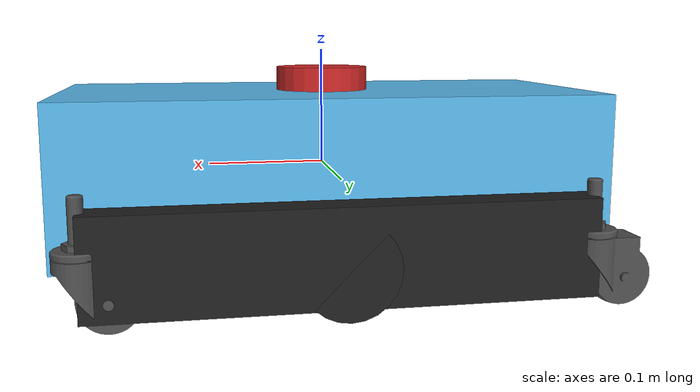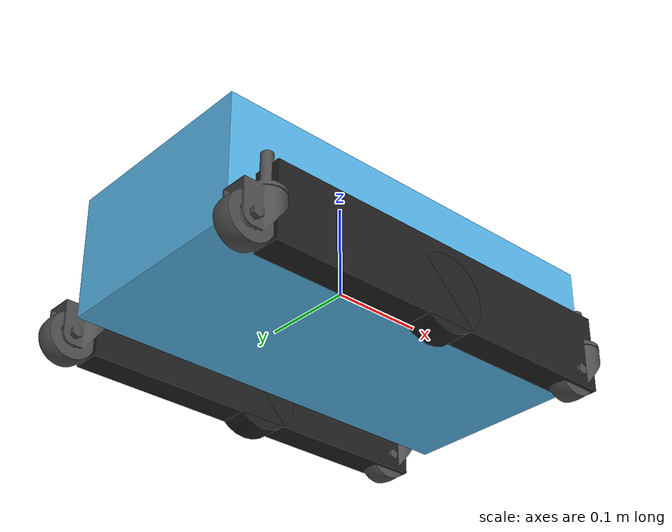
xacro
<?xml version="1.0" ?>

<robot name="eSAUl" xmlns:xacro="http://www.ros.org/wiki/xacro">

  <xacro:include filename="$(find esaul_description)/urdf/track.xacro" />
  <xacro:include filename="$(find esaul_description)/urdf/wheel.xacro" />
  <xacro:include filename="$(find esaul_description)/urdf/lidar.xacro" />
  <xacro:include filename="$(find esaul_description)/urdf/imu.xacro" />

  <xacro:property name="M_PI" value="3.1415926535897931" />

  <xacro:property name="chassis_mass" value="20" />
  <xacro:property name="chassis_length" value="0.45" />
  <xacro:property name="chassis_width" value="0.22" />
  <xacro:property name="chassis_height" value="0.13" />

  <xacro:property name="wheel_friction" value="1.75" />

  <!-- INERTIAL MACROS -->
  <xacro:macro name="null_inertial">
    <inertial>
      <mass value="0.01"/>
      <inertia ixx="0.01" ixy="0" ixz="0"
               iyy="0.01" iyz="0"
               izz="0.01"/>
      </inertial>
  </xacro:macro>

  <xacro:macro name="default_inertial" params="mass">
    <inertial>
      <mass value="${mass}" />
    <inertia ixx="1.0" ixy="0.0" ixz="0.0"
             iyy="1.0" iyz="0.0"
             izz="1.0" />
    </inertial>
  </xacro:macro>

  <xacro:macro name="solid_cuboid_inertial"
               params="width length height mass *origin">
    <inertial>
      <xacro:insert_block name="origin"/>
      <mass value="${mass}"/>
      <inertia ixx="${mass * (width * width + height * height) / 12}"
               ixy="0" ixz="0"
               iyy="${mass * (length * length + height * height) / 12}"
               iyz="0"
               izz="${mass * (width * width + length * length) / 12}"/>
    </inertial>
  </xacro:macro>

  <!-- INERTIAL MACROS END -->

  <link name="base_link">
    <collision name="collision_chassis">
      <geometry>
        <box size="${chassis_length} ${chassis_width} ${chassis_height}"/>
      </geometry>
    </collision>
    <visual>
      <geometry>
        <box size="${chassis_length} ${chassis_width} ${chassis_height}"/>
      </geometry>
    </visual>
    <xacro:solid_cuboid_inertial
          length="${chassis_length}" width="${chassis_width}"
          height="${chassis_height}" mass="${chassis_mass}">
      <origin xyz="0 0 0" rpy="0 0 0" />
    </xacro:solid_cuboid_inertial>
  </link>

  <xacro:link_track name="link_right" />
	<xacro:joint_track name="joint_right" child="link_right" origin_xyz="0 ${-chassis_width/2-box_width/1.5} ${-2.1*box_width}" />

  <xacro:link_wheel name="right_wheel" />
	<xacro:joint_wheel_right name="joint_right_wheel" child="right_wheel" origin_xyz="0 0 0" />

  <xacro:link_track name="link_left" />
	<xacro:joint_track name="joint_left" child="link_left" origin_xyz="0 ${chassis_width/2+box_width/1.5} ${-2.1*box_width}" />

  <xacro:link_wheel name="left_wheel" />
	<xacro:joint_wheel_left name="joint_left_wheel" child="left_wheel" origin_xyz="0 0 0" />

  <xacro:support_wheel parent="link_left" location="left_1">
    <origin xyz="${box_length/2} 0 0.027965" rpy="0 0 0" />
  </xacro:support_wheel>

  <xacro:support_wheel parent="link_left" location="left_2">
    <origin xyz="${-box_length/2} 0 0.027965" rpy="0 0 0" />
  </xacro:support_wheel>

  <xacro:support_wheel parent="link_right" location="right_1">
    <origin xyz="${box_length/2} 0 0.027965" rpy="0 0 0" />
  </xacro:support_wheel>

  <xacro:support_wheel parent="link_right" location="right_2">
    <origin xyz="${-box_length/2} 0 0.027965" rpy="0 0 0" />
  </xacro:support_wheel>

  <gazebo>
    		<plugin name="ModelPlugin" filename="libesaul_plugin.so" >
      		<robotName>eSAUl</robotName>
            <joint_left>joint_left_wheel</joint_left>
            <joint_right>joint_right_wheel</joint_right>
            <width_chassis>${chassis_width}</width_chassis>
            <wh_rad>${track_rad}</wh_rad>
   		 </plugin>
	</gazebo>

 </robot>

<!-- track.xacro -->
<robot xmlns:xacro="http://www.ros.org/wiki/xacro">

  <xacro:property name="track_mass" value="0.3" />
  <xacro:property name="box_length" value="0.4" />
  <xacro:property name="box_width" value="0.03" />
  <xacro:property name="box_height" value="0.08" />

  <xacro:macro name="null_inertial">
    <inertial>
      <mass value="0.01"/>
      <inertia ixx="0.01" ixy="0" ixz="0"
               iyy="0.01" iyz="0"
               izz="0.01"/>
      </inertial>
  </xacro:macro>

   <xacro:macro name="solid_cuboid_inertial"
               params="width length height mass *origin">
    <inertial>
      <xacro:insert_block name="origin"/>
      <mass value="${mass}"/>
      <inertia ixx="${mass * (width * width + height * height) / 12}"
               ixy="0" ixz="0"
               iyy="${mass * (length * length + height * height) / 12}"
               iyz="0"
               izz="${mass * (width * width + length * length) / 12}"/>
    </inertial>
  </xacro:macro>

   <xacro:macro name="link_track" params="name">
    <link name="${name}">
      <collision name="collision_left_track">
        <origin rpy="0 0 0" xyz="0 0 0.01"/>
        <geometry>
          <box size="${box_length} ${box_width} ${box_height}"/>
        </geometry>
      </collision>
      <visual>
        <origin rpy="0 0 0" xyz="0 0 0.01"/>
        <geometry>
          <box size="${box_length} ${box_width} ${box_height}"/>
        </geometry>
        <material name="black"/>
      </visual>
      <xacro:solid_cuboid_inertial
            length="${box_length}" width="${box_width}"
            height="${box_height}" mass="${track_mass}">
        <origin xyz="0 0 0" rpy="0 0 0" />
      </xacro:solid_cuboid_inertial>
    </link>
    <gazebo reference="${name}">
      <mu1>0</mu1>
      <mu2>0</mu2>
      <material>Gazebo/Black</material>
    </gazebo>
  </xacro:macro>

  <xacro:macro name="joint_track" params="name child origin_xyz">
    <joint name="${name}" type="fixed">
      <origin rpy="0 0 0" xyz="${origin_xyz}"/>
      <child link="${child}"/>
      <parent link="base_link"/>
      <axis rpy="0 0 0" xyz="0 1 0"/>
      <joint_properties damping="1.0" friction="0.0"/>
    </joint>
  </xacro:macro>

</robot>

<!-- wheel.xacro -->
<robot xmlns:xacro="http://www.ros.org/wiki/xacro">

  <xacro:property name="wheel_mass" value="5" />
  <xacro:property name="track_rad" value="0.04" />
  <xacro:property name="track_length" value="0.03" />

   <xacro:macro name="solid_cylinder_inertial"
               params="r h mass *origin">
    <inertial>
      <xacro:insert_block name="origin"/>
      <mass value="${mass}"/>
      <inertia ixx="${(mass * h * h)/12 + (mass * r * r)/4}" ixy="0.0" ixz="0.0"
               iyy="${(mass * h * h)/12 + (mass * r * r)/4}" iyz="0.0"
               izz="${mass / 2 * r * r}" />
    </inertial>
  </xacro:macro>

  <xacro:macro name="link_wheel" params="name">
    <link name="${name}">
      <xacro:solid_cylinder_inertial
          r="${track_rad}" h="${track_length}"
          mass="${wheel_mass}" >
        <origin xyz="0 0 0" rpy="0 0 0" />
      </xacro:solid_cylinder_inertial>
      <collision name="link_right_wheel_collision">
        <origin rpy="0 1.5707 1.5707" xyz="0 0 0"/>
        <geometry>
          <cylinder length="${track_length}" radius="${track_rad}"/>
        </geometry>
      </collision>
      <visual name="${name}_visual">
        <origin rpy="0 1.5707 1.5707" xyz="0 0 0"/>
        <geometry>
          <cylinder length="${track_length}" radius="${track_rad}"/>
        </geometry>
      </visual>
    </link>
    <gazebo reference="${name}">
      <mu1>3</mu1>
      <mu2>3</mu2>
      <material>Gazebo/Black</material>
      <kp>10000000</kp>
      <kd>1</kd>
    </gazebo>
  </xacro:macro>

  <xacro:macro name="joint_wheel_right" params="name child origin_xyz">
    <joint name="${name}" type="continuous">
      <origin rpy="0 0 0" xyz="${origin_xyz}"/>
      <child link="${child}"/>
      <parent link="link_right"/>
      <axis rpy="0 0 0" xyz="0 1 0"/>
      <limit effort="10000" velocity="1000"/>
    </joint>
  </xacro:macro>

    <xacro:macro name="joint_wheel_left" params="name child origin_xyz">
    <joint name="${name}" type="continuous">
      <origin rpy="0 0 0" xyz="${origin_xyz}"/>
      <child link="${child}"/>
      <parent link="link_left"/>
      <axis rpy="0 0 0" xyz="0 1 0"/>
      <limit effort="10000" velocity="1000"/>
    </joint>
  </xacro:macro>

 <xacro:macro name="support_wheel" params="parent location *origin">
    <link name="support_wheel_${location}_link">
      <visual>
        <origin xyz="0 0 0" rpy="0 0 0" />
        <geometry>
          <mesh filename="package://caster_description/mesh/support_wheel.stl" />
        </geometry>
        <material name="">
          <color rgba="0.3 0.3 0.3 1.0" />>
        </material>
      </visual>
      <collision>
        <origin xyz="0 0 0" rpy="0 0 0" />
        <geometry>
          <mesh filename="package://caster_description/mesh/support_wheel.stl" />
        </geometry>
      </collision>
      <xacro:default_inertial mass="5" />
    </link>

   <joint name="support_wheel_${location}_joint" type="fixed">
      <xacro:insert_block name="origin" />
      <parent link="${parent}" />
      <child link="support_wheel_${location}_link" />
    </joint>
  </xacro:macro>

</robot>

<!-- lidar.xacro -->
<robot xmlns:xacro="http://www.ros.org/wiki/xacro">

  <xacro:property name="lidar_mass" value="0.1" />
  <xacro:property name="lidar_height" value="0.02"/>
  <xacro:property name="lidar_radius" value="0.04"/>
  <xacro:property name="chassis_height" value="0.13" />

   <xacro:macro name="solid_cylinder_inertial"
               params="r h mass *origin">
    <inertial>
      <xacro:insert_block name="origin"/>
      <mass value="${mass}"/>
      <inertia ixx="${(mass * h * h)/12 + (mass * r * r)/4}" ixy="0.0" ixz="0.0"
               iyy="${(mass * h * h)/12 + (mass * r * r)/4}" iyz="0.0"
               izz="${mass / 2 * r * r}" />
    </inertial>
  </xacro:macro>

 <link name="lidar_link">
    <xacro:solid_cylinder_inertial
        r="${lidar_radius}" h="${lidar_height}"
        mass="${lidar_mass}" >
      <origin xyz="0 0 0" rpy="0 0 0" />
    </xacro:solid_cylinder_inertial>
    <collision>
      <origin xyz="0 0 0" rpy="0 0 0"/>
      <geometry>
        <cylinder length="${lidar_height}" radius="${lidar_radius}"/>
      </geometry>
    </collision>

    <visual>
      <origin xyz="0 0 0" rpy="0 0 0"/>
      <geometry>
        <cylinder length="${lidar_height}" radius="${lidar_radius}"/>
      </geometry>
    </visual>
  </link>

  <gazebo reference="lidar_link">
    <material>Gazebo/Red</material>
    <sensor type="ray" name="head_hokuyo_sensor">
      <pose>0 0 0 0 0 0</pose>
      <visualize>false</visualize>
      <update_rate>40</update_rate>
      <ray>
        <scan>
          <horizontal>
            <samples>720</samples>
            <resolution>1</resolution>
            <min_angle>-3.14</min_angle>
            <max_angle>3.14</max_angle>
          </horizontal>
        </scan>
        <range>
          <min>0.10</min>
          <max>10</max>
          <resolution>0.01</resolution>
        </range>
        <noise>
          <type>gaussian</type>
          <mean>0.0</mean>
          <stddev>0.01</stddev>
        </noise>
      </ray>
      <plugin name="gazebo_ros_head_hokuyo_controller" filename="libgazebo_ros_laser.so">
        <topicName>/eSAUl/laser/scan</topicName>
        <frameName>lidar_link</frameName>
      </plugin>
    </sensor>
  </gazebo>

  <joint name="lidar_joint" type="fixed">
    <axis xyz="0 1 0" />
    <origin xyz="0 0 ${chassis_height/2 + lidar_height/2}" rpy="0 0 0"/>
    <parent link="base_link"/>
    <child link="lidar_link"/>
  </joint>

</robot>
